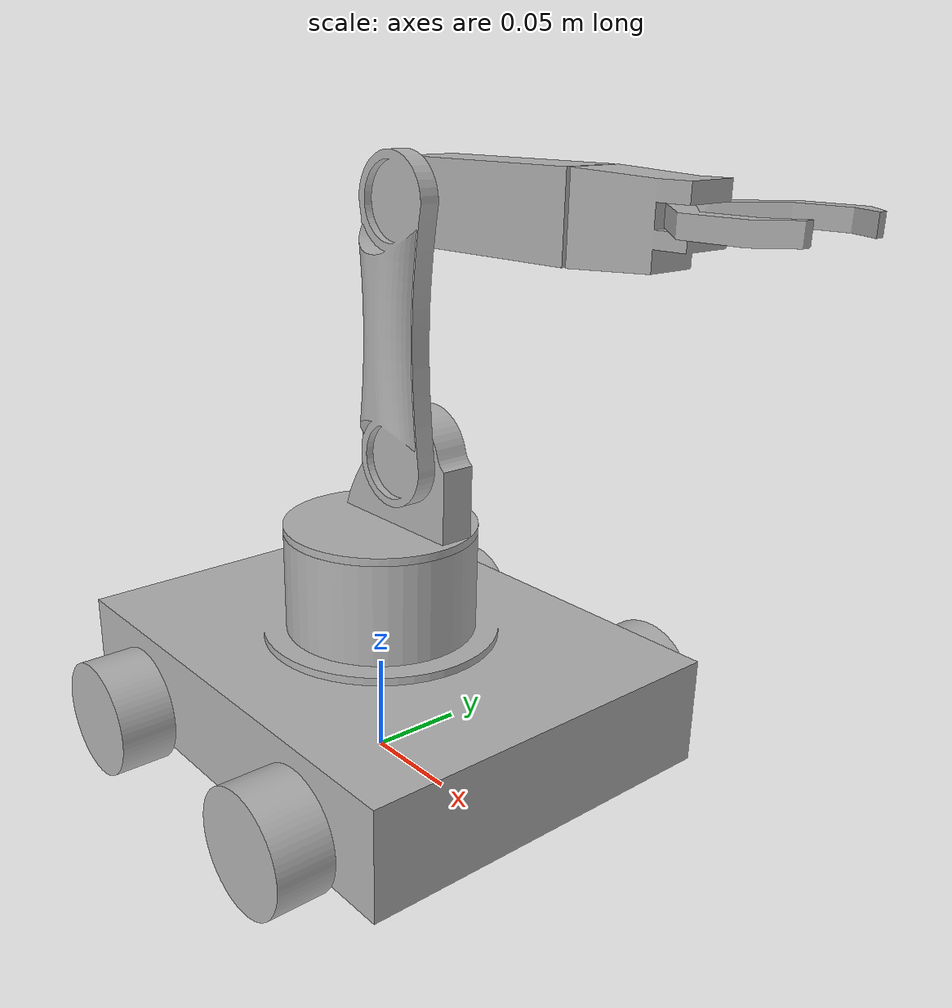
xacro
<?xml version="1.0" ?>
<robot name="urdf_model" xmlns:xacro="http://www.ros.org/wiki/xacro">

<xacro:include filename="$(find urdf_model_description)/urdf/materials.xacro" />
<xacro:include filename="$(find urdf_model_description)/urdf/urdf_model.trans" />
<xacro:include filename="$(find urdf_model_description)/urdf/urdf_model.gazebo" />
<link name="base_link">
  <inertial>
    <origin xyz="-3.2735352305020813e-05 2.2817695773421177e-17 0.04899896958866134" rpy="0 0 0"/>
    <mass value="25.03156665708149"/>
    <inertia ixx="0.089389" iyy="0.129853" izz="0.188793" ixy="0.0" iyz="-0.0" ixz="-0.0"/>
  </inertial>
  <visual>
    <origin xyz="0 0 0" rpy="0 0 0"/>
    <geometry>
      <mesh filename="package://urdf_model_description/meshes/base_link.stl" scale="0.001 0.001 0.001"/>
    </geometry>
    <material name="silver"/>
  </visual>
  <collision>
    <origin xyz="0 0 0" rpy="0 0 0"/>
    <geometry>
      <mesh filename="package://urdf_model_description/meshes/base_link.stl" scale="0.001 0.001 0.001"/>
    </geometry>
  </collision>
</link>

<link name="right_front_wheel_1">
  <inertial>
    <origin xyz="2.646476950640686e-07 0.014499999999999999 -3.8271598386957484e-08" rpy="0 0 0"/>
    <mass value="0.6436652108307448"/>
    <inertia ixx="0.00019" iyy="0.00029" izz="0.00019" ixy="0.0" iyz="-0.0" ixz="0.0"/>
  </inertial>
  <visual>
    <origin xyz="-0.069967 -0.101 -0.03" rpy="0 0 0"/>
    <geometry>
      <mesh filename="package://urdf_model_description/meshes/right_front_wheel_1.stl" scale="0.001 0.001 0.001"/>
    </geometry>
    <material name="silver"/>
  </visual>
  <collision>
    <origin xyz="-0.069967 -0.101 -0.03" rpy="0 0 0"/>
    <geometry>
      <mesh filename="package://urdf_model_description/meshes/right_front_wheel_1.stl" scale="0.001 0.001 0.001"/>
    </geometry>
  </collision>
</link>

<link name="left_front_wheel_1">
  <inertial>
    <origin xyz="2.646476950640686e-07 -0.014499999999999999 -3.8271598386957484e-08" rpy="0 0 0"/>
    <mass value="0.6436652108307448"/>
    <inertia ixx="0.00019" iyy="0.00029" izz="0.00019" ixy="0.0" iyz="-0.0" ixz="0.0"/>
  </inertial>
  <visual>
    <origin xyz="-0.069967 0.101 -0.03" rpy="0 0 0"/>
    <geometry>
      <mesh filename="package://urdf_model_description/meshes/left_front_wheel_1.stl" scale="0.001 0.001 0.001"/>
    </geometry>
    <material name="silver"/>
  </visual>
  <collision>
    <origin xyz="-0.069967 0.101 -0.03" rpy="0 0 0"/>
    <geometry>
      <mesh filename="package://urdf_model_description/meshes/left_front_wheel_1.stl" scale="0.001 0.001 0.001"/>
    </geometry>
  </collision>
</link>

<link name="right_back_wheel_1">
  <inertial>
    <origin xyz="2.6464769511957975e-07 0.014499999999999999 -3.827159839042693e-08" rpy="0 0 0"/>
    <mass value="0.6436652108307449"/>
    <inertia ixx="0.00019" iyy="0.00029" izz="0.00019" ixy="-0.0" iyz="0.0" ixz="-0.0"/>
  </inertial>
  <visual>
    <origin xyz="0.070033 -0.101 -0.03" rpy="0 0 0"/>
    <geometry>
      <mesh filename="package://urdf_model_description/meshes/right_back_wheel_1.stl" scale="0.001 0.001 0.001"/>
    </geometry>
    <material name="silver"/>
  </visual>
  <collision>
    <origin xyz="0.070033 -0.101 -0.03" rpy="0 0 0"/>
    <geometry>
      <mesh filename="package://urdf_model_description/meshes/right_back_wheel_1.stl" scale="0.001 0.001 0.001"/>
    </geometry>
  </collision>
</link>

<link name="left_back_wheel_1">
  <inertial>
    <origin xyz="2.6464769511957975e-07 -0.014499999999999999 -3.827159839042693e-08" rpy="0 0 0"/>
    <mass value="0.6436652108307449"/>
    <inertia ixx="0.00019" iyy="0.00029" izz="0.00019" ixy="0.0" iyz="0.0" ixz="-0.0"/>
  </inertial>
  <visual>
    <origin xyz="0.070033 0.101 -0.03" rpy="0 0 0"/>
    <geometry>
      <mesh filename="package://urdf_model_description/meshes/left_back_wheel_1.stl" scale="0.001 0.001 0.001"/>
    </geometry>
    <material name="silver"/>
  </visual>
  <collision>
    <origin xyz="0.070033 0.101 -0.03" rpy="0 0 0"/>
    <geometry>
      <mesh filename="package://urdf_model_description/meshes/left_back_wheel_1.stl" scale="0.001 0.001 0.001"/>
    </geometry>
  </collision>
</link>

<link name="shoulder_1">
  <inertial>
    <origin xyz="0.007514289007661664 0.007602863797013143 0.019188379794857297" rpy="0 0 0"/>
    <mass value="0.6710598269389816"/>
    <inertia ixx="0.000401" iyy="0.000547" izz="0.000495" ixy="-2.1e-05" iyz="-4.8e-05" ixz="-7.2e-05"/>
  </inertial>
  <visual>
    <origin xyz="3.3e-05 -0.0 -0.125" rpy="0 0 0"/>
    <geometry>
      <mesh filename="package://urdf_model_description/meshes/shoulder_1.stl" scale="0.001 0.001 0.001"/>
    </geometry>
    <material name="silver"/>
  </visual>
  <collision>
    <origin xyz="3.3e-05 -0.0 -0.125" rpy="0 0 0"/>
    <geometry>
      <mesh filename="package://urdf_model_description/meshes/shoulder_1.stl" scale="0.001 0.001 0.001"/>
    </geometry>
  </collision>
</link>

<link name="link_1_1">
  <inertial>
    <origin xyz="0.00022466701958611876 -0.00727238274191449 0.05976772809737407" rpy="0 0 0"/>
    <mass value="0.5592617972739391"/>
    <inertia ixx="0.000897" iyy="0.000942" izz="7.5e-05" ixy="0.0" iyz="-0.0" ixz="-1e-06"/>
  </inertial>
  <visual>
    <origin xyz="-0.015973 -0.003 -0.16525" rpy="0 0 0"/>
    <geometry>
      <mesh filename="package://urdf_model_description/meshes/link_1_1.stl" scale="0.001 0.001 0.001"/>
    </geometry>
    <material name="silver"/>
  </visual>
  <collision>
    <origin xyz="-0.015973 -0.003 -0.16525" rpy="0 0 0"/>
    <geometry>
      <mesh filename="package://urdf_model_description/meshes/link_1_1.stl" scale="0.001 0.001 0.001"/>
    </geometry>
  </collision>
</link>

<link name="link_2_1">
  <inertial>
    <origin xyz="0.040513882471495476 0.013500000000002888 9.390305627332562e-05" rpy="0 0 0"/>
    <mass value="0.891633826472026"/>
    <inertia ixx="0.000156" iyy="0.00103" izz="0.000982" ixy="-0.0" iyz="0.0" ixz="-2e-06"/>
  </inertial>
  <visual>
    <origin xyz="-0.015973 -0.003 -0.28525" rpy="0 0 0"/>
    <geometry>
      <mesh filename="package://urdf_model_description/meshes/link_2_1.stl" scale="0.001 0.001 0.001"/>
    </geometry>
    <material name="silver"/>
  </visual>
  <collision>
    <origin xyz="-0.015973 -0.003 -0.28525" rpy="0 0 0"/>
    <geometry>
      <mesh filename="package://urdf_model_description/meshes/link_2_1.stl" scale="0.001 0.001 0.001"/>
    </geometry>
  </collision>
</link>

<link name="link_3_1">
  <inertial>
    <origin xyz="0.02348554482503687 -3.0307928435922143e-05 0.000969638071666945" rpy="0 0 0"/>
    <mass value="0.31959457784345924"/>
    <inertia ixx="4.9e-05" iyy="0.0001" izz="8.3e-05" ixy="-0.0" iyz="0.0" ixz="-5e-06"/>
  </inertial>
  <visual>
    <origin xyz="-0.113017 -0.0165 -0.285191" rpy="0 0 0"/>
    <geometry>
      <mesh filename="package://urdf_model_description/meshes/link_3_1.stl" scale="0.001 0.001 0.001"/>
    </geometry>
    <material name="silver"/>
  </visual>
  <collision>
    <origin xyz="-0.113017 -0.0165 -0.285191" rpy="0 0 0"/>
    <geometry>
      <mesh filename="package://urdf_model_description/meshes/link_3_1.stl" scale="0.001 0.001 0.001"/>
    </geometry>
  </collision>
</link>

<link name="finger_1_1">
  <inertial>
    <origin xyz="0.02368269377236476 0.015294400695857219 0.0043054667041994565" rpy="0 0 0"/>
    <mass value="0.04010688336344423"/>
    <inertia ixx="3e-06" iyy="1.3e-05" izz="1.6e-05" ixy="-4e-06" iyz="-0.0" ixz="-0.0"/>
  </inertial>
  <visual>
    <origin xyz="-0.161516 -0.023841 -0.285711" rpy="0 0 0"/>
    <geometry>
      <mesh filename="package://urdf_model_description/meshes/finger_1_1.stl" scale="0.001 0.001 0.001"/>
    </geometry>
    <material name="silver"/>
  </visual>
  <collision>
    <origin xyz="-0.161516 -0.023841 -0.285711" rpy="0 0 0"/>
    <geometry>
      <mesh filename="package://urdf_model_description/meshes/finger_1_1.stl" scale="0.001 0.001 0.001"/>
    </geometry>
  </collision>
</link>

<link name="finger_2_1">
  <inertial>
    <origin xyz="0.023682693772364732 -0.015293672253381099 0.004305466704200178" rpy="0 0 0"/>
    <mass value="0.04010688336344422"/>
    <inertia ixx="3e-06" iyy="1.3e-05" izz="1.6e-05" ixy="4e-06" iyz="0.0" ixz="-0.0"/>
  </inertial>
  <visual>
    <origin xyz="-0.161516 -0.009096 -0.285711" rpy="0 0 0"/>
    <geometry>
      <mesh filename="package://urdf_model_description/meshes/finger_2_1.stl" scale="0.001 0.001 0.001"/>
    </geometry>
    <material name="silver"/>
  </visual>
  <collision>
    <origin xyz="-0.161516 -0.009096 -0.285711" rpy="0 0 0"/>
    <geometry>
      <mesh filename="package://urdf_model_description/meshes/finger_2_1.stl" scale="0.001 0.001 0.001"/>
    </geometry>
  </collision>
</link>

<joint name="Rev1" type="continuous">
  <origin xyz="0.069967 0.101 0.03" rpy="0 0 0"/>
  <parent link="base_link"/>
  <child link="right_front_wheel_1"/>
  <axis xyz="0.0 1.0 0.0"/>
</joint>

<joint name="Rev2" type="continuous">
  <origin xyz="0.069967 -0.101 0.03" rpy="0 0 0"/>
  <parent link="base_link"/>
  <child link="left_front_wheel_1"/>
  <axis xyz="0.0 -1.0 0.0"/>
</joint>

<joint name="Rev3" type="continuous">
  <origin xyz="-0.070033 0.101 0.03" rpy="0 0 0"/>
  <parent link="base_link"/>
  <child link="right_back_wheel_1"/>
  <axis xyz="0.0 1.0 0.0"/>
</joint>

<joint name="Rev4" type="continuous">
  <origin xyz="-0.070033 -0.101 0.03" rpy="0 0 0"/>
  <parent link="base_link"/>
  <child link="left_back_wheel_1"/>
  <axis xyz="0.0 -1.0 0.0"/>
</joint>

<joint name="Rev5" type="continuous">
  <origin xyz="-3.3e-05 0.0 0.125" rpy="0 0 0"/>
  <parent link="base_link"/>
  <child link="shoulder_1"/>
  <axis xyz="0.0 0.0 1.0"/>
</joint>

<joint name="Rev6" type="continuous">
  <origin xyz="0.016006 0.003 0.04025" rpy="0 0 0"/>
  <parent link="shoulder_1"/>
  <child link="link_1_1"/>
  <axis xyz="0.0 1.0 0.0"/>
</joint>

<joint name="Rev7" type="continuous">
  <origin xyz="0.0 0.0 0.12" rpy="0 0 0"/>
  <parent link="link_1_1"/>
  <child link="link_2_1"/>
  <axis xyz="0.0 1.0 0.0"/>
</joint>

<joint name="Rev8" type="continuous">
  <origin xyz="0.097044 0.0135 -5.9e-05" rpy="0 0 0"/>
  <parent link="link_2_1"/>
  <child link="link_3_1"/>
  <axis xyz="0.999997 0.0 0.002338"/>
</joint>

<joint name="Rev9" type="continuous">
  <origin xyz="0.048499 0.007341 0.00052" rpy="0 0 0"/>
  <parent link="link_3_1"/>
  <child link="finger_1_1"/>
  <axis xyz="-0.002338 -0.0 0.999997"/>
</joint>

<joint name="Rev10" type="continuous">
  <origin xyz="0.048499 -0.007404 0.00052" rpy="0 0 0"/>
  <parent link="link_3_1"/>
  <child link="finger_2_1"/>
  <axis xyz="-0.002338 -0.0 0.999997"/>
</joint>

</robot>

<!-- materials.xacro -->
<robot name="urdf_model" xmlns:xacro="http://www.ros.org/wiki/xacro" >

<material name="silver">
  <color rgba="0.700 0.700 0.700 1.000"/>
</material>

</robot>

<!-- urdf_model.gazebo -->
<robot name="urdf_model" xmlns:xacro="http://www.ros.org/wiki/xacro" >

<xacro:property name="body_color" value="Gazebo/Silver" />

<gazebo>
  <plugin name="control" filename="libgazebo_ros_control.so"/>
</gazebo>
<gazebo reference="base_link">
  <material>${body_color}</material>
  <mu1>0.2</mu1>
  <mu2>0.2</mu2>
  <selfCollide>true</selfCollide>
  <gravity>true</gravity>
</gazebo>

<gazebo reference="right_front_wheel_1">
  <material>${body_color}</material>
  <mu1>0.2</mu1>
  <mu2>0.2</mu2>
  <selfCollide>true</selfCollide>
</gazebo>

<gazebo reference="left_front_wheel_1">
  <material>${body_color}</material>
  <mu1>0.2</mu1>
  <mu2>0.2</mu2>
  <selfCollide>true</selfCollide>
</gazebo>

<gazebo reference="right_back_wheel_1">
  <material>${body_color}</material>
  <mu1>0.2</mu1>
  <mu2>0.2</mu2>
  <selfCollide>true</selfCollide>
</gazebo>

<gazebo reference="left_back_wheel_1">
  <material>${body_color}</material>
  <mu1>0.2</mu1>
  <mu2>0.2</mu2>
  <selfCollide>true</selfCollide>
</gazebo>

<gazebo reference="shoulder_1">
  <material>${body_color}</material>
  <mu1>0.2</mu1>
  <mu2>0.2</mu2>
  <selfCollide>true</selfCollide>
</gazebo>

<gazebo reference="link_1_1">
  <material>${body_color}</material>
  <mu1>0.2</mu1>
  <mu2>0.2</mu2>
  <selfCollide>true</selfCollide>
</gazebo>

<gazebo reference="link_2_1">
  <material>${body_color}</material>
  <mu1>0.2</mu1>
  <mu2>0.2</mu2>
  <selfCollide>true</selfCollide>
</gazebo>

<gazebo reference="link_3_1">
  <material>${body_color}</material>
  <mu1>0.2</mu1>
  <mu2>0.2</mu2>
  <selfCollide>true</selfCollide>
</gazebo>

<gazebo reference="finger_1_1">
  <material>${body_color}</material>
  <mu1>0.2</mu1>
  <mu2>0.2</mu2>
  <selfCollide>true</selfCollide>
</gazebo>

<gazebo reference="finger_2_1">
  <material>${body_color}</material>
  <mu1>0.2</mu1>
  <mu2>0.2</mu2>
  <selfCollide>true</selfCollide>
</gazebo>

</robot>
